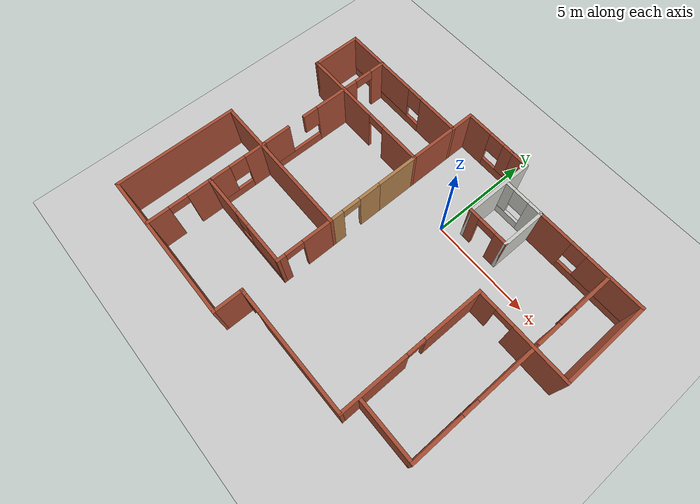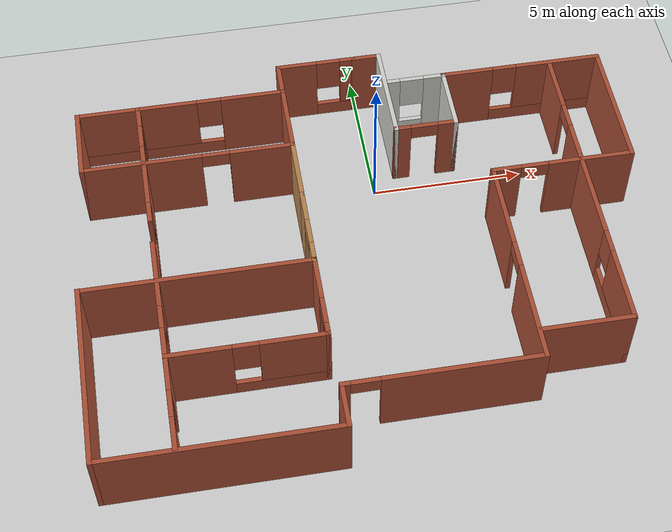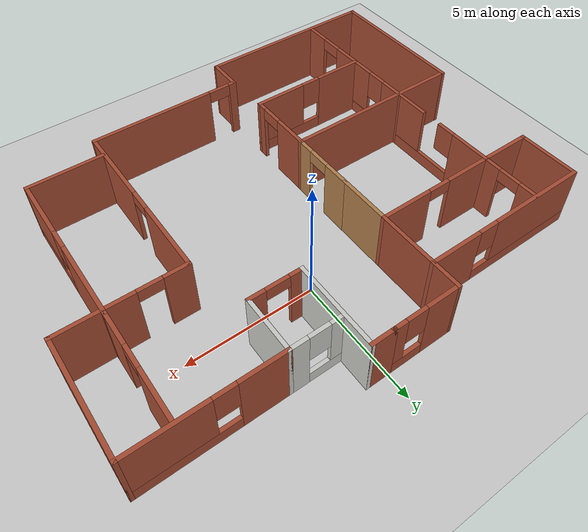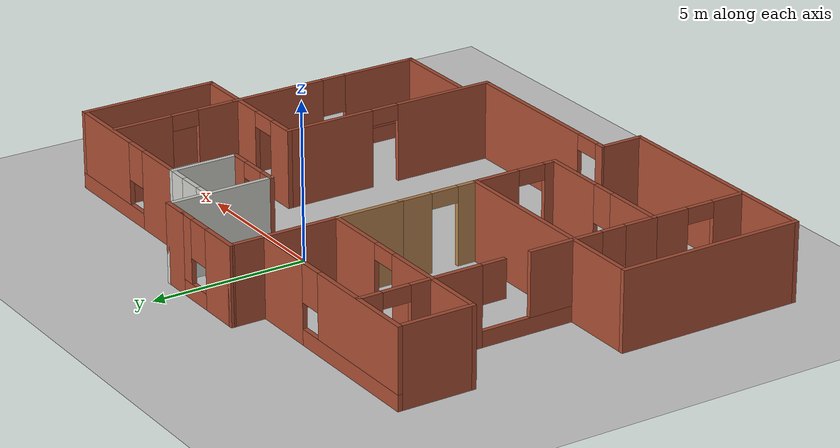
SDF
<?xml version="1.0" ?>
<sdf version="1.5">
  <world name="default">
    <!-- A global light source -->
    <include>
      <uri>model://sun</uri>
    </include>
    <!-- A ground plane -->
    <include>
      <uri>model://ground_plane</uri>
    </include>
    <include>
      <uri>model://asphalt_plane</uri>
    </include>
    <model name='COMPLEX_TEST_ENVIRONMENT_1'>
    <pose frame=''>-0.872826 -3.08396 0 0 -0 0</pose>
    <link name='Wall_102'>
      <collision name='Wall_102_Collision'>
        <geometry>
          <box>
            <size>2.5 0.15 2.5</size>
          </box>
        </geometry>
        <pose frame=''>0 0 1.25 0 -0 0</pose>
      </collision>
      <visual name='Wall_102_Visual'>
        <pose frame=''>0 0 1.25 0 -0 0</pose>
        <geometry>
          <box>
            <size>2.5 0.15 2.5</size>
          </box>
        </geometry>
        <material>
          <script>
            <uri>file://media/materials/scripts/gazebo.material</uri>
            <name>Gazebo/Bricks</name>
          </script>
          <ambient>1 1 1 1</ambient>
        </material>
        <meta>
          <layer>0</layer>
        </meta>
      </visual>
      <pose frame=''>-8.62482 4.75004 0 0 -0 -1.5708</pose>
    </link>
    <link name='Wall_103'>
      <collision name='Wall_103_Collision'>
        <geometry>
          <box>
            <size>2.15 0.15 2.5</size>
          </box>
        </geometry>
        <pose frame=''>0 0 1.25 0 -0 0</pose>
      </collision>
      <visual name='Wall_103_Visual'>
        <pose frame=''>0 0 1.25 0 -0 0</pose>
        <geometry>
          <box>
            <size>2.15 0.15 2.5</size>
          </box>
        </geometry>
        <material>
          <script>
            <uri>file://media/materials/scripts/gazebo.material</uri>
            <name>Gazebo/Bricks</name>
          </script>
          <ambient>1 1 1 1</ambient>
        </material>
        <meta>
          <layer>0</layer>
        </meta>
      </visual>
      <pose frame=''>-7.62483 3.57504 0 0 -0 0</pose>
    </link>
    <link name='Wall_106'>
      <collision name='Wall_106_Collision'>
        <geometry>
          <box>
            <size>1.25 0.15 2.5</size>
          </box>
        </geometry>
        <pose frame=''>0 0 1.25 0 -0 0</pose>
      </collision>
      <visual name='Wall_106_Visual'>
        <pose frame=''>0 0 1.25 0 -0 0</pose>
        <geometry>
          <box>
            <size>1.25 0.15 2.5</size>
          </box>
        </geometry>
        <material>
          <script>
            <uri>file://media/materials/scripts/gazebo.material</uri>
            <name>Gazebo/Bricks</name>
          </script>
          <ambient>1 1 1 1</ambient>
        </material>
        <meta>
          <layer>0</layer>
        </meta>
      </visual>
      <pose frame=''>-1.77483 6.47504 0 0 -0 1.5708</pose>
    </link>
    <link name='Wall_107'>
      <pose frame=''>-0.474825 7.02504 0 0 -0 0</pose>
      <visual name='Wall_107_Visual_0'>
        <pose frame=''>-0.684442 0 1.25 0 -0 0</pose>
        <geometry>
          <box>
            <size>1.38112 0.15 2.5</size>
          </box>
        </geometry>
        <material>
          <script>
            <uri>file://media/materials/scripts/gazebo.material</uri>
            <name>Gazebo/Bricks</name>
          </script>
          <ambient>1 1 1 1</ambient>
        </material>
        <meta>
          <layer>0</layer>
        </meta>
      </visual>
      <collision name='Wall_107_Collision_0'>
        <geometry>
          <box>
            <size>1.38112 0.15 2.5</size>
          </box>
        </geometry>
        <pose frame=''>-0.684442 0 1.25 0 -0 0</pose>
      </collision>
      <visual name='Wall_107_Visual_1'>
        <pose frame=''>0.690558 0 0.25 0 -0 0</pose>
        <geometry>
          <box>
            <size>1.36888 0.15 0.5</size>
          </box>
        </geometry>
        <material>
          <script>
            <uri>file://media/materials/scripts/gazebo.material</uri>
            <name>Gazebo/Bricks</name>
          </script>
          <ambient>1 1 1 1</ambient>
        </material>
        <meta>
          <layer>0</layer>
        </meta>
      </visual>
      <collision name='Wall_107_Collision_1'>
        <geometry>
          <box>
            <size>1.36888 0.15 0.5</size>
          </box>
        </geometry>
        <pose frame=''>0.690558 0 0.25 0 -0 0</pose>
      </collision>
      <visual name='Wall_107_Visual_2'>
        <pose frame=''>1.09056 0 1.5 0 -0 0</pose>
        <geometry>
          <box>
            <size>0.568884 0.15 2</size>
          </box>
        </geometry>
        <material>
          <script>
            <uri>file://media/materials/scripts/gazebo.material</uri>
            <name>Gazebo/Bricks</name>
          </script>
          <ambient>1 1 1 1</ambient>
        </material>
        <meta>
          <layer>0</layer>
        </meta>
      </visual>
      <collision name='Wall_107_Collision_2'>
        <geometry>
          <box>
            <size>0.568884 0.15 2</size>
          </box>
        </geometry>
        <pose frame=''>1.09056 0 1.5 0 -0 0</pose>
      </collision>
      <visual name='Wall_107_Visual_3'>
        <pose frame=''>0.406116 0 1.9 0 -0 0</pose>
        <geometry>
          <box>
            <size>0.8 0.15 1.2</size>
          </box>
        </geometry>
        <material>
          <script>
            <uri>file://media/materials/scripts/gazebo.material</uri>
            <name>Gazebo/Bricks</name>
          </script>
          <ambient>1 1 1 1</ambient>
        </material>
        <meta>
          <layer>0</layer>
        </meta>
      </visual>
      <collision name='Wall_107_Collision_3'>
        <geometry>
          <box>
            <size>0.8 0.15 1.2</size>
          </box>
        </geometry>
        <pose frame=''>0.406116 0 1.9 0 -0 0</pose>
      </collision>
    </link>
    <link name='Wall_110'>
      <collision name='Wall_110_Collision'>
        <geometry>
          <box>
            <size>2.25 0.15 2.5</size>
          </box>
        </geometry>
        <pose frame=''>0 0 1.25 0 -0 0</pose>
      </collision>
      <visual name='Wall_110_Visual'>
        <pose frame=''>0 0 1.25 0 -0 0</pose>
        <geometry>
          <box>
            <size>2.25 0.15 2.5</size>
          </box>
        </geometry>
        <material>
          <script>
            <uri>file://media/materials/scripts/gazebo.material</uri>
            <name>Gazebo/CeilingTiled</name>
          </script>
          <ambient>1 1 1 1</ambient>
        </material>
        <meta>
          <layer>0</layer>
        </meta>
      </visual>
      <pose frame=''>3.67517 4.72504 0 0 -0 1.5708</pose>
    </link>
    <link name='Wall_111'>
      <pose frame=''>6.35017 5.77504 0 0 -0 0</pose>
      <visual name='Wall_111_Visual_0'>
        <pose frame=''>-1.85201 0 1.25 0 -0 0</pose>
        <geometry>
          <box>
            <size>1.79597 0.15 2.5</size>
          </box>
        </geometry>
        <material>
          <script>
            <uri>file://media/materials/scripts/gazebo.material</uri>
            <name>Gazebo/Bricks</name>
          </script>
          <ambient>1 1 1 1</ambient>
        </material>
        <meta>
          <layer>0</layer>
        </meta>
      </visual>
      <collision name='Wall_111_Collision_0'>
        <geometry>
          <box>
            <size>1.79597 0.15 2.5</size>
          </box>
        </geometry>
        <pose frame=''>-1.85201 0 1.25 0 -0 0</pose>
      </collision>
      <visual name='Wall_111_Visual_1'>
        <pose frame=''>0.897985 0 0.25 0 -0 0</pose>
        <geometry>
          <box>
            <size>3.70403 0.15 0.5</size>
          </box>
        </geometry>
        <material>
          <script>
            <uri>file://media/materials/scripts/gazebo.material</uri>
            <name>Gazebo/Bricks</name>
          </script>
          <ambient>1 1 1 1</ambient>
        </material>
        <meta>
          <layer>0</layer>
        </meta>
      </visual>
      <collision name='Wall_111_Collision_1'>
        <geometry>
          <box>
            <size>3.70403 0.15 0.5</size>
          </box>
        </geometry>
        <pose frame=''>0.897985 0 0.25 0 -0 0</pose>
      </collision>
      <visual name='Wall_111_Visual_2'>
        <pose frame=''>1.29798 0 1.5 0 -0 0</pose>
        <geometry>
          <box>
            <size>2.90403 0.15 2</size>
          </box>
        </geometry>
        <material>
          <script>
            <uri>file://media/materials/scripts/gazebo.material</uri>
            <name>Gazebo/Bricks</name>
          </script>
          <ambient>1 1 1 1</ambient>
        </material>
        <meta>
          <layer>0</layer>
        </meta>
      </visual>
      <collision name='Wall_111_Collision_2'>
        <geometry>
          <box>
            <size>2.90403 0.15 2</size>
          </box>
        </geometry>
        <pose frame=''>1.29798 0 1.5 0 -0 0</pose>
      </collision>
      <visual name='Wall_111_Visual_3'>
        <pose frame=''>-0.55403 0 1.9 0 -0 0</pose>
        <geometry>
          <box>
            <size>0.8 0.15 1.2</size>
          </box>
        </geometry>
        <material>
          <script>
            <uri>file://media/materials/scripts/gazebo.material</uri>
            <name>Gazebo/Bricks</name>
          </script>
          <ambient>1 1 1 1</ambient>
        </material>
        <meta>
          <layer>0</layer>
        </meta>
      </visual>
      <collision name='Wall_111_Collision_3'>
        <geometry>
          <box>
            <size>0.8 0.15 1.2</size>
          </box>
        </geometry>
        <pose frame=''>-0.55403 0 1.9 0 -0 0</pose>
      </collision>
    </link>
    <link name='Wall_112'>
      <collision name='Wall_112_Collision'>
        <geometry>
          <box>
            <size>4.5 0.15 2.5</size>
          </box>
        </geometry>
        <pose frame=''>0 0 1.25 0 -0 0</pose>
      </collision>
      <visual name='Wall_112_Visual'>
        <pose frame=''>0 0 1.25 0 -0 0</pose>
        <geometry>
          <box>
            <size>4.5 0.15 2.5</size>
          </box>
        </geometry>
        <material>
          <script>
            <uri>file://media/materials/scripts/gazebo.material</uri>
            <name>Gazebo/Bricks</name>
          </script>
          <ambient>1 1 1 1</ambient>
        </material>
        <meta>
          <layer>0</layer>
        </meta>
      </visual>
      <pose frame=''>9.02518 3.60004 0 0 -0 -1.5708</pose>
    </link>
    <link name='Wall_113'>
      <pose frame=''>6.72517 1.42504 0 0 -0 3.14159</pose>
      <visual name='Wall_113_Visual_0'>
        <pose frame=''>-0.947985 0 1.25 0 -0 0</pose>
        <geometry>
          <box>
            <size>2.85403 0.15 2.5</size>
          </box>
        </geometry>
        <material>
          <script>
            <uri>file://media/materials/scripts/gazebo.material</uri>
            <name>Gazebo/Bricks</name>
          </script>
          <ambient>1 1 1 1</ambient>
        </material>
        <meta>
          <layer>0</layer>
        </meta>
      </visual>
      <collision name='Wall_113_Collision_0'>
        <geometry>
          <box>
            <size>2.85403 0.15 2.5</size>
          </box>
        </geometry>
        <pose frame=''>-0.947985 0 1.25 0 -0 0</pose>
      </collision>
      <visual name='Wall_113_Visual_1'>
        <pose frame=''>1.87702 0 1.25 0 -0 0</pose>
        <geometry>
          <box>
            <size>0.99597 0.15 2.5</size>
          </box>
        </geometry>
        <material>
          <script>
            <uri>file://media/materials/scripts/gazebo.material</uri>
            <name>Gazebo/Bricks</name>
          </script>
          <ambient>1 1 1 1</ambient>
        </material>
        <meta>
          <layer>0</layer>
        </meta>
      </visual>
      <collision name='Wall_113_Collision_1'>
        <geometry>
          <box>
            <size>0.99597 0.15 2.5</size>
          </box>
        </geometry>
        <pose frame=''>1.87702 0 1.25 0 -0 0</pose>
      </collision>
      <visual name='Wall_113_Visual_2'>
        <pose frame=''>0.92903 0 2.25 0 -0 0</pose>
        <geometry>
          <box>
            <size>0.9 0.15 0.5</size>
          </box>
        </geometry>
        <material>
          <script>
            <uri>file://media/materials/scripts/gazebo.material</uri>
            <name>Gazebo/Bricks</name>
          </script>
          <ambient>1 1 1 1</ambient>
        </material>
        <meta>
          <layer>0</layer>
        </meta>
      </visual>
      <collision name='Wall_113_Collision_2'>
        <geometry>
          <box>
            <size>0.9 0.15 0.5</size>
          </box>
        </geometry>
        <pose frame=''>0.92903 0 2.25 0 -0 0</pose>
      </collision>
    </link>
    <link name='Wall_116'>
      <collision name='Wall_116_Collision'>
        <geometry>
          <box>
            <size>1 0.15 2.5</size>
          </box>
        </geometry>
        <pose frame=''>0 0 1.25 0 -0 0</pose>
      </collision>
      <visual name='Wall_116_Visual'>
        <pose frame=''>0 0 1.25 0 -0 0</pose>
        <geometry>
          <box>
            <size>1 0.15 2.5</size>
          </box>
        </geometry>
        <material>
          <script>
            <uri>file://media/materials/scripts/gazebo.material</uri>
            <name>Gazebo/Bricks</name>
          </script>
          <ambient>1 1 1 1</ambient>
        </material>
        <meta>
          <layer>0</layer>
        </meta>
      </visual>
      <pose frame=''>1.25018 7.02504 0 0 -0 0</pose>
    </link>
    <link name='Wall_117'>
      <collision name='Wall_117_Collision'>
        <geometry>
          <box>
            <size>3.5 0.15 2.5</size>
          </box>
        </geometry>
        <pose frame=''>0 0 1.25 0 -0 0</pose>
      </collision>
      <visual name='Wall_117_Visual'>
        <pose frame=''>0 0 1.25 0 -0 0</pose>
        <geometry>
          <box>
            <size>3.5 0.15 2.5</size>
          </box>
        </geometry>
        <material>
          <script>
            <uri>file://media/materials/scripts/gazebo.material</uri>
            <name>Gazebo/CeilingTiled</name>
          </script>
          <ambient>1 1 1 1</ambient>
        </material>
        <meta>
          <layer>0</layer>
        </meta>
      </visual>
      <pose frame=''>1.67518 5.35004 0 0 -0 -1.5708</pose>
    </link>
    <link name='Wall_119'>
      <pose frame=''>2.67517 3.67504 0 0 -0 0</pose>
      <visual name='Wall_119_Visual_0'>
        <pose frame=''>-0.789731 0 1.25 0 -0 0</pose>
        <geometry>
          <box>
            <size>0.570537 0.15 2.5</size>
          </box>
        </geometry>
        <material>
          <script>
            <uri>file://media/materials/scripts/gazebo.material</uri>
            <name>Gazebo/Bricks</name>
          </script>
          <ambient>1 1 1 1</ambient>
        </material>
        <meta>
          <layer>0</layer>
        </meta>
      </visual>
      <collision name='Wall_119_Collision_0'>
        <geometry>
          <box>
            <size>0.570537 0.15 2.5</size>
          </box>
        </geometry>
        <pose frame=''>-0.789731 0 1.25 0 -0 0</pose>
      </collision>
      <visual name='Wall_119_Visual_1'>
        <pose frame=''>0.735269 0 1.25 0 -0 0</pose>
        <geometry>
          <box>
            <size>0.679463 0.15 2.5</size>
          </box>
        </geometry>
        <material>
          <script>
            <uri>file://media/materials/scripts/gazebo.material</uri>
            <name>Gazebo/Bricks</name>
          </script>
          <ambient>1 1 1 1</ambient>
        </material>
        <meta>
          <layer>0</layer>
        </meta>
      </visual>
      <collision name='Wall_119_Collision_1'>
        <geometry>
          <box>
            <size>0.679463 0.15 2.5</size>
          </box>
        </geometry>
        <pose frame=''>0.735269 0 1.25 0 -0 0</pose>
      </collision>
      <visual name='Wall_119_Visual_2'>
        <pose frame=''>-0.054463 0 2.25 0 -0 0</pose>
        <geometry>
          <box>
            <size>0.9 0.15 0.5</size>
          </box>
        </geometry>
        <material>
          <script>
            <uri>file://media/materials/scripts/gazebo.material</uri>
            <name>Gazebo/Bricks</name>
          </script>
          <ambient>1 1 1 1</ambient>
        </material>
        <meta>
          <layer>0</layer>
        </meta>
      </visual>
      <collision name='Wall_119_Collision_2'>
        <geometry>
          <box>
            <size>0.9 0.15 0.5</size>
          </box>
        </geometry>
        <pose frame=''>-0.054463 0 2.25 0 -0 0</pose>
      </collision>
    </link>
    <link name='Wall_121'>
      <pose frame=''>4.42518 -2.12496 0 0 -0 -1.5708</pose>
      <visual name='Wall_121_Visual_0'>
        <pose frame=''>-2.12488 0 1.25 0 -0 0</pose>
        <geometry>
          <box>
            <size>3.00023 0.15 2.5</size>
          </box>
        </geometry>
        <material>
          <script>
            <uri>file://media/materials/scripts/gazebo.material</uri>
            <name>Gazebo/Bricks</name>
          </script>
          <ambient>1 1 1 1</ambient>
        </material>
        <meta>
          <layer>0</layer>
        </meta>
      </visual>
      <collision name='Wall_121_Collision_0'>
        <geometry>
          <box>
            <size>3.00023 0.15 2.5</size>
          </box>
        </geometry>
        <pose frame=''>-2.12488 0 1.25 0 -0 0</pose>
      </collision>
      <visual name='Wall_121_Visual_1'>
        <pose frame=''>1.95012 0 1.25 0 -0 0</pose>
        <geometry>
          <box>
            <size>3.34977 0.15 2.5</size>
          </box>
        </geometry>
        <material>
          <script>
            <uri>file://media/materials/scripts/gazebo.material</uri>
            <name>Gazebo/Bricks</name>
          </script>
          <ambient>1 1 1 1</ambient>
        </material>
        <meta>
          <layer>0</layer>
        </meta>
      </visual>
      <collision name='Wall_121_Collision_1'>
        <geometry>
          <box>
            <size>3.34977 0.15 2.5</size>
          </box>
        </geometry>
        <pose frame=''>1.95012 0 1.25 0 -0 0</pose>
      </collision>
      <visual name='Wall_121_Visual_2'>
        <pose frame=''>-0.174768 0 2.25 0 -0 0</pose>
        <geometry>
          <box>
            <size>0.9 0.15 0.5</size>
          </box>
        </geometry>
        <material>
          <script>
            <uri>file://media/materials/scripts/gazebo.material</uri>
            <name>Gazebo/Bricks</name>
          </script>
          <ambient>1 1 1 1</ambient>
        </material>
        <meta>
          <layer>0</layer>
        </meta>
      </visual>
      <collision name='Wall_121_Collision_2'>
        <geometry>
          <box>
            <size>0.9 0.15 0.5</size>
          </box>
        </geometry>
        <pose frame=''>-0.174768 0 2.25 0 -0 0</pose>
      </collision>
    </link>
    <link name='Wall_122'>
      <pose frame=''>1.37518 -5.67496 0 0 -0 3.14159</pose>
      <visual name='Wall_122_Visual_0'>
        <pose frame=''>-0.61602 0 1.25 0 -0 0</pose>
        <geometry>
          <box>
            <size>5.01796 0.15 2.5</size>
          </box>
        </geometry>
        <material>
          <script>
            <uri>file://media/materials/scripts/gazebo.material</uri>
            <name>Gazebo/Bricks</name>
          </script>
          <ambient>1 1 1 1</ambient>
        </material>
        <meta>
          <layer>0</layer>
        </meta>
      </visual>
      <collision name='Wall_122_Collision_0'>
        <geometry>
          <box>
            <size>5.01796 0.15 2.5</size>
          </box>
        </geometry>
        <pose frame=''>-0.61602 0 1.25 0 -0 0</pose>
      </collision>
      <visual name='Wall_122_Visual_1'>
        <pose frame=''>2.95898 0 1.25 0 -0 0</pose>
        <geometry>
          <box>
            <size>0.332041 0.15 2.5</size>
          </box>
        </geometry>
        <material>
          <script>
            <uri>file://media/materials/scripts/gazebo.material</uri>
            <name>Gazebo/Bricks</name>
          </script>
          <ambient>1 1 1 1</ambient>
        </material>
        <meta>
          <layer>0</layer>
        </meta>
      </visual>
      <collision name='Wall_122_Collision_1'>
        <geometry>
          <box>
            <size>0.332041 0.15 2.5</size>
          </box>
        </geometry>
        <pose frame=''>2.95898 0 1.25 0 -0 0</pose>
      </collision>
      <visual name='Wall_122_Visual_2'>
        <pose frame=''>2.34296 0 2.25 0 -0 0</pose>
        <geometry>
          <box>
            <size>0.9 0.15 0.5</size>
          </box>
        </geometry>
        <material>
          <script>
            <uri>file://media/materials/scripts/gazebo.material</uri>
            <name>Gazebo/Bricks</name>
          </script>
          <ambient>1 1 1 1</ambient>
        </material>
        <meta>
          <layer>0</layer>
        </meta>
      </visual>
      <collision name='Wall_122_Collision_2'>
        <geometry>
          <box>
            <size>0.9 0.15 0.5</size>
          </box>
        </geometry>
        <pose frame=''>2.34296 0 2.25 0 -0 0</pose>
      </collision>
    </link>
    <link name='Wall_123'>
      <collision name='Wall_123_Collision'>
        <geometry>
          <box>
            <size>1.5 0.15 2.5</size>
          </box>
        </geometry>
        <pose frame=''>0 0 1.25 0 -0 0</pose>
      </collision>
      <visual name='Wall_123_Visual'>
        <pose frame=''>0 0 1.25 0 -0 0</pose>
        <geometry>
          <box>
            <size>1.5 0.15 2.5</size>
          </box>
        </geometry>
        <material>
          <script>
            <uri>file://media/materials/scripts/gazebo.material</uri>
            <name>Gazebo/Bricks</name>
          </script>
          <ambient>1 1 1 1</ambient>
        </material>
        <meta>
          <layer>0</layer>
        </meta>
      </visual>
      <pose frame=''>-1.675 -6.35 0 0 -0 -1.57106</pose>
    </link>
    <link name='Wall_124'>
      <collision name='Wall_124_Collision'>
        <geometry>
          <box>
            <size>7.5 0.15 2.5</size>
          </box>
        </geometry>
        <pose frame=''>0 0 1.25 0 -0 0</pose>
      </collision>
      <visual name='Wall_124_Visual'>
        <pose frame=''>0 0 1.25 0 -0 0</pose>
        <geometry>
          <box>
            <size>7.5 0.15 2.5</size>
          </box>
        </geometry>
        <material>
          <script>
            <uri>file://media/materials/scripts/gazebo.material</uri>
            <name>Gazebo/Bricks</name>
          </script>
          <ambient>1 1 1 1</ambient>
        </material>
        <meta>
          <layer>0</layer>
        </meta>
      </visual>
      <pose frame=''>-5.35017 -7.02504 0 0 -0 3.14159</pose>
    </link>
    <link name='Wall_133'>
      <collision name='Wall_133_Collision'>
        <geometry>
          <box>
            <size>7.25 0.15 2.5</size>
          </box>
        </geometry>
        <pose frame=''>0 0 1.25 0 -0 0</pose>
      </collision>
      <visual name='Wall_133_Visual'>
        <pose frame=''>0 0 1.25 0 -0 0</pose>
        <geometry>
          <box>
            <size>7.25 0.15 2.5</size>
          </box>
        </geometry>
        <material>
          <script>
            <uri>file://media/materials/scripts/gazebo.material</uri>
            <name>Gazebo/Bricks</name>
          </script>
          <ambient>1 1 1 1</ambient>
        </material>
        <meta>
          <layer>0</layer>
        </meta>
      </visual>
      <pose frame=''>-5.32482 -1.12496 0 0 -0 3.14159</pose>
    </link>
    <link name='Wall_136'>
      <pose frame=''>-6.62483 1.27504 0 0 -0 -1.5708</pose>
      <visual name='Wall_136_Visual_0'>
        <pose frame=''>-1.52914 0 1.25 0 -0 0</pose>
        <geometry>
          <box>
            <size>1.69172 0.15 2.5</size>
          </box>
        </geometry>
        <material>
          <script>
            <uri>file://media/materials/scripts/gazebo.material</uri>
            <name>Gazebo/Bricks</name>
          </script>
          <ambient>1 1 1 1</ambient>
        </material>
        <meta>
          <layer>0</layer>
        </meta>
      </visual>
      <collision name='Wall_136_Collision_0'>
        <geometry>
          <box>
            <size>1.69172 0.15 2.5</size>
          </box>
        </geometry>
        <pose frame=''>-1.52914 0 1.25 0 -0 0</pose>
      </collision>
      <visual name='Wall_136_Visual_1'>
        <pose frame=''>0.845859 0 0.25 0 -0 0</pose>
        <geometry>
          <box>
            <size>3.05828 0.15 0.5</size>
          </box>
        </geometry>
        <material>
          <script>
            <uri>file://media/materials/scripts/gazebo.material</uri>
            <name>Gazebo/Bricks</name>
          </script>
          <ambient>1 1 1 1</ambient>
        </material>
        <meta>
          <layer>0</layer>
        </meta>
      </visual>
      <collision name='Wall_136_Collision_1'>
        <geometry>
          <box>
            <size>3.05828 0.15 0.5</size>
          </box>
        </geometry>
        <pose frame=''>0.845859 0 0.25 0 -0 0</pose>
      </collision>
      <visual name='Wall_136_Visual_2'>
        <pose frame=''>1.63913 0 1.5 0 -0 0</pose>
        <geometry>
          <box>
            <size>1.47174 0.15 2</size>
          </box>
        </geometry>
        <material>
          <script>
            <uri>file://media/materials/scripts/gazebo.material</uri>
            <name>Gazebo/Bricks</name>
          </script>
          <ambient>1 1 1 1</ambient>
        </material>
        <meta>
          <layer>0</layer>
        </meta>
      </visual>
      <collision name='Wall_136_Collision_2'>
        <geometry>
          <box>
            <size>1.47174 0.15 2</size>
          </box>
        </geometry>
        <pose frame=''>1.63913 0 1.5 0 -0 0</pose>
      </collision>
      <visual name='Wall_136_Visual_3'>
        <pose frame=''>-0.290012 0 1.9 0 -0 0</pose>
        <geometry>
          <box>
            <size>0.78654 0.15 1.2</size>
          </box>
        </geometry>
        <material>
          <script>
            <uri>file://media/materials/scripts/gazebo.material</uri>
            <name>Gazebo/Bricks</name>
          </script>
          <ambient>1 1 1 1</ambient>
        </material>
        <meta>
          <layer>0</layer>
        </meta>
      </visual>
      <collision name='Wall_136_Collision_3'>
        <geometry>
          <box>
            <size>0.78654 0.15 1.2</size>
          </box>
        </geometry>
        <pose frame=''>-0.290012 0 1.9 0 -0 0</pose>
      </collision>
    </link>
    <link name='Wall_139'>
      <collision name='Wall_139_Collision'>
        <geometry>
          <box>
            <size>6.05572 0.15 2.5</size>
          </box>
        </geometry>
        <pose frame=''>0 0 1.25 0 -0 0</pose>
      </collision>
      <visual name='Wall_139_Visual'>
        <pose frame=''>0 0 1.25 0 -0 0</pose>
        <geometry>
          <box>
            <size>6.05572 0.15 2.5</size>
          </box>
        </geometry>
        <material>
          <script>
            <uri>file://media/materials/scripts/gazebo.material</uri>
            <name>Gazebo/Bricks</name>
          </script>
          <ambient>1 1 1 1</ambient>
        </material>
        <meta>
          <layer>0</layer>
        </meta>
      </visual>
      <pose frame=''>-9.02517 -4.07218 0 0 -0 1.5708</pose>
    </link>
    <link name='Wall_141'>
      <pose frame=''>-6.62483 -2.44996 0 0 -0 -1.5708</pose>
      <visual name='Wall_141_Visual_0'>
        <pose frame=''>-0.941719 0 1.25 0 -0 0</pose>
        <geometry>
          <box>
            <size>1.11656 0.15 2.5</size>
          </box>
        </geometry>
        <material>
          <script>
            <uri>file://media/materials/scripts/gazebo.material</uri>
            <name>Gazebo/Bricks</name>
          </script>
          <ambient>1 1 1 1</ambient>
        </material>
        <meta>
          <layer>0</layer>
        </meta>
      </visual>
      <collision name='Wall_141_Collision_0'>
        <geometry>
          <box>
            <size>1.11656 0.15 2.5</size>
          </box>
        </geometry>
        <pose frame=''>-0.941719 0 1.25 0 -0 0</pose>
      </collision>
      <visual name='Wall_141_Visual_1'>
        <pose frame=''>0.558281 0 0.25 0 -0 0</pose>
        <geometry>
          <box>
            <size>1.88344 0.15 0.5</size>
          </box>
        </geometry>
        <material>
          <script>
            <uri>file://media/materials/scripts/gazebo.material</uri>
            <name>Gazebo/Bricks</name>
          </script>
          <ambient>1 1 1 1</ambient>
        </material>
        <meta>
          <layer>0</layer>
        </meta>
      </visual>
      <collision name='Wall_141_Collision_1'>
        <geometry>
          <box>
            <size>1.88344 0.15 0.5</size>
          </box>
        </geometry>
        <pose frame=''>0.558281 0 0.25 0 -0 0</pose>
      </collision>
      <visual name='Wall_141_Visual_2'>
        <pose frame=''>0.958281 0 1.5 0 -0 0</pose>
        <geometry>
          <box>
            <size>1.08344 0.15 2</size>
          </box>
        </geometry>
        <material>
          <script>
            <uri>file://media/materials/scripts/gazebo.material</uri>
            <name>Gazebo/Bricks</name>
          </script>
          <ambient>1 1 1 1</ambient>
        </material>
        <meta>
          <layer>0</layer>
        </meta>
      </visual>
      <collision name='Wall_141_Collision_2'>
        <geometry>
          <box>
            <size>1.08344 0.15 2</size>
          </box>
        </geometry>
        <pose frame=''>0.958281 0 1.5 0 -0 0</pose>
      </collision>
      <visual name='Wall_141_Visual_3'>
        <pose frame=''>0.016562 0 1.9 0 -0 0</pose>
        <geometry>
          <box>
            <size>0.8 0.15 1.2</size>
          </box>
        </geometry>
        <material>
          <script>
            <uri>file://media/materials/scripts/gazebo.material</uri>
            <name>Gazebo/Bricks</name>
          </script>
          <ambient>1 1 1 1</ambient>
        </material>
        <meta>
          <layer>0</layer>
        </meta>
      </visual>
      <collision name='Wall_141_Collision_3'>
        <geometry>
          <box>
            <size>0.8 0.15 1.2</size>
          </box>
        </geometry>
        <pose frame=''>0.016562 0 1.9 0 -0 0</pose>
      </collision>
    </link>
    <link name='Wall_142'>
      <pose frame=''>-4.19982 -3.87496 0 0 -0 0</pose>
      <visual name='Wall_142_Visual_0'>
        <pose frame=''>-1.47366 0 1.25 0 -0 0</pose>
        <geometry>
          <box>
            <size>2.05267 0.15 2.5</size>
          </box>
        </geometry>
        <material>
          <script>
            <uri>file://media/materials/scripts/gazebo.material</uri>
            <name>Gazebo/Bricks</name>
          </script>
          <ambient>1 1 1 1</ambient>
        </material>
        <meta>
          <layer>0</layer>
        </meta>
      </visual>
      <collision name='Wall_142_Collision_0'>
        <geometry>
          <box>
            <size>2.05267 0.15 2.5</size>
          </box>
        </geometry>
        <pose frame=''>-1.47366 0 1.25 0 -0 0</pose>
      </collision>
      <visual name='Wall_142_Visual_1'>
        <pose frame=''>1.02634 0 0.25 0 -0 0</pose>
        <geometry>
          <box>
            <size>2.94733 0.15 0.5</size>
          </box>
        </geometry>
        <material>
          <script>
            <uri>file://media/materials/scripts/gazebo.material</uri>
            <name>Gazebo/Bricks</name>
          </script>
          <ambient>1 1 1 1</ambient>
        </material>
        <meta>
          <layer>0</layer>
        </meta>
      </visual>
      <collision name='Wall_142_Collision_1'>
        <geometry>
          <box>
            <size>2.94733 0.15 0.5</size>
          </box>
        </geometry>
        <pose frame=''>1.02634 0 0.25 0 -0 0</pose>
      </collision>
      <visual name='Wall_142_Visual_2'>
        <pose frame=''>1.42634 0 1.5 0 -0 0</pose>
        <geometry>
          <box>
            <size>2.14733 0.15 2</size>
          </box>
        </geometry>
        <material>
          <script>
            <uri>file://media/materials/scripts/gazebo.material</uri>
            <name>Gazebo/Bricks</name>
          </script>
          <ambient>1 1 1 1</ambient>
        </material>
        <meta>
          <layer>0</layer>
        </meta>
      </visual>
      <collision name='Wall_142_Collision_2'>
        <geometry>
          <box>
            <size>2.14733 0.15 2</size>
          </box>
        </geometry>
        <pose frame=''>1.42634 0 1.5 0 -0 0</pose>
      </collision>
      <visual name='Wall_142_Visual_3'>
        <pose frame=''>-0.047326 0 1.9 0 -0 0</pose>
        <geometry>
          <box>
            <size>0.8 0.15 1.2</size>
          </box>
        </geometry>
        <material>
          <script>
            <uri>file://media/materials/scripts/gazebo.material</uri>
            <name>Gazebo/Bricks</name>
          </script>
          <ambient>1 1 1 1</ambient>
        </material>
        <meta>
          <layer>0</layer>
        </meta>
      </visual>
      <collision name='Wall_142_Collision_3'>
        <geometry>
          <box>
            <size>0.8 0.15 1.2</size>
          </box>
        </geometry>
        <pose frame=''>-0.047326 0 1.9 0 -0 0</pose>
      </collision>
    </link>
    <link name='Wall_143'>
      <pose frame=''>-1.77483 -2.49996 0 0 -0 1.5708</pose>
      <visual name='Wall_143_Visual_0'>
        <pose frame=''>-1.21744 0 1.25 0 -0 0</pose>
        <geometry>
          <box>
            <size>0.46512 0.15 2.5</size>
          </box>
        </geometry>
        <material>
          <script>
            <uri>file://media/materials/scripts/gazebo.material</uri>
            <name>Gazebo/Bricks</name>
          </script>
          <ambient>1 1 1 1</ambient>
        </material>
        <meta>
          <layer>0</layer>
        </meta>
      </visual>
      <collision name='Wall_143_Collision_0'>
        <geometry>
          <box>
            <size>0.46512 0.15 2.5</size>
          </box>
        </geometry>
        <pose frame=''>-1.21744 0 1.25 0 -0 0</pose>
      </collision>
      <visual name='Wall_143_Visual_1'>
        <pose frame=''>0.68256 0 1.25 0 -0 0</pose>
        <geometry>
          <box>
            <size>1.53488 0.15 2.5</size>
          </box>
        </geometry>
        <material>
          <script>
            <uri>file://media/materials/scripts/gazebo.material</uri>
            <name>Gazebo/Bricks</name>
          </script>
          <ambient>1 1 1 1</ambient>
        </material>
        <meta>
          <layer>0</layer>
        </meta>
      </visual>
      <collision name='Wall_143_Collision_1'>
        <geometry>
          <box>
            <size>1.53488 0.15 2.5</size>
          </box>
        </geometry>
        <pose frame=''>0.68256 0 1.25 0 -0 0</pose>
      </collision>
      <visual name='Wall_143_Visual_2'>
        <pose frame=''>-0.53488 0 2.25 0 -0 0</pose>
        <geometry>
          <box>
            <size>0.9 0.15 0.5</size>
          </box>
        </geometry>
        <material>
          <script>
            <uri>file://media/materials/scripts/gazebo.material</uri>
            <name>Gazebo/Bricks</name>
          </script>
          <ambient>1 1 1 1</ambient>
        </material>
        <meta>
          <layer>0</layer>
        </meta>
      </visual>
      <collision name='Wall_143_Collision_2'>
        <geometry>
          <box>
            <size>0.9 0.15 0.5</size>
          </box>
        </geometry>
        <pose frame=''>-0.53488 0 2.25 0 -0 0</pose>
      </collision>
    </link>
    <link name='Wall_145'>
      <pose frame=''>2.75018 5.77504 0 0 -0 3.14159</pose>
      <visual name='Wall_145_Visual_0'>
        <pose frame=''>-0.62211 0 1.25 0 -0 0</pose>
        <geometry>
          <box>
            <size>0.755781 0.15 2.5</size>
          </box>
        </geometry>
        <material>
          <script>
            <uri>file://media/materials/scripts/gazebo.material</uri>
            <name>Gazebo/CeilingTiled</name>
          </script>
          <ambient>1 1 1 1</ambient>
        </material>
        <meta>
          <layer>0</layer>
        </meta>
      </visual>
      <collision name='Wall_145_Collision_0'>
        <geometry>
          <box>
            <size>0.755781 0.15 2.5</size>
          </box>
        </geometry>
        <pose frame=''>-0.62211 0 1.25 0 -0 0</pose>
      </collision>
      <visual name='Wall_145_Visual_1'>
        <pose frame=''>0.37789 0 0.25 0 -0 0</pose>
        <geometry>
          <box>
            <size>1.24422 0.15 0.5</size>
          </box>
        </geometry>
        <material>
          <script>
            <uri>file://media/materials/scripts/gazebo.material</uri>
            <name>Gazebo/CeilingTiled</name>
          </script>
          <ambient>1 1 1 1</ambient>
        </material>
        <meta>
          <layer>0</layer>
        </meta>
      </visual>
      <collision name='Wall_145_Collision_1'>
        <geometry>
          <box>
            <size>1.24422 0.15 0.5</size>
          </box>
        </geometry>
        <pose frame=''>0.37789 0 0.25 0 -0 0</pose>
      </collision>
      <visual name='Wall_145_Visual_2'>
        <pose frame=''>0.77789 0 1.5 0 -0 0</pose>
        <geometry>
          <box>
            <size>0.444219 0.15 2</size>
          </box>
        </geometry>
        <material>
          <script>
            <uri>file://media/materials/scripts/gazebo.material</uri>
            <name>Gazebo/CeilingTiled</name>
          </script>
          <ambient>1 1 1 1</ambient>
        </material>
        <meta>
          <layer>0</layer>
        </meta>
      </visual>
      <collision name='Wall_145_Collision_2'>
        <geometry>
          <box>
            <size>0.444219 0.15 2</size>
          </box>
        </geometry>
        <pose frame=''>0.77789 0 1.5 0 -0 0</pose>
      </collision>
      <visual name='Wall_145_Visual_3'>
        <pose frame=''>0.155781 0 1.9 0 -0 0</pose>
        <geometry>
          <box>
            <size>0.8 0.15 1.2</size>
          </box>
        </geometry>
        <material>
          <script>
            <uri>file://media/materials/scripts/gazebo.material</uri>
            <name>Gazebo/CeilingTiled</name>
          </script>
          <ambient>1 1 1 1</ambient>
        </material>
        <meta>
          <layer>0</layer>
        </meta>
      </visual>
      <collision name='Wall_145_Collision_3'>
        <geometry>
          <box>
            <size>0.8 0.15 1.2</size>
          </box>
        </geometry>
        <pose frame=''>0.155781 0 1.9 0 -0 0</pose>
      </collision>
    </link>
    <link name='Wall_147'>
      <pose frame=''>-6.62483 -5.42496 0 0 -0 -1.5708</pose>
      <visual name='Wall_147_Visual_0'>
        <pose frame=''>-1.00645 0 1.25 0 -0 0</pose>
        <geometry>
          <box>
            <size>1.2371 0.15 2.5</size>
          </box>
        </geometry>
        <material>
          <script>
            <uri>file://media/materials/scripts/gazebo.material</uri>
            <name>Gazebo/Bricks</name>
          </script>
          <ambient>1 1 1 1</ambient>
        </material>
        <meta>
          <layer>0</layer>
        </meta>
      </visual>
      <collision name='Wall_147_Collision_0'>
        <geometry>
          <box>
            <size>1.2371 0.15 2.5</size>
          </box>
        </geometry>
        <pose frame=''>-1.00645 0 1.25 0 -0 0</pose>
      </collision>
      <visual name='Wall_147_Visual_1'>
        <pose frame=''>1.06855 0 1.25 0 -0 0</pose>
        <geometry>
          <box>
            <size>1.11291 0.15 2.5</size>
          </box>
        </geometry>
        <material>
          <script>
            <uri>file://media/materials/scripts/gazebo.material</uri>
            <name>Gazebo/Bricks</name>
          </script>
          <ambient>1 1 1 1</ambient>
        </material>
        <meta>
          <layer>0</layer>
        </meta>
      </visual>
      <collision name='Wall_147_Collision_1'>
        <geometry>
          <box>
            <size>1.11291 0.15 2.5</size>
          </box>
        </geometry>
        <pose frame=''>1.06855 0 1.25 0 -0 0</pose>
      </collision>
      <visual name='Wall_147_Visual_2'>
        <pose frame=''>0.062095 0 2.25 0 -0 0</pose>
        <geometry>
          <box>
            <size>0.9 0.15 0.5</size>
          </box>
        </geometry>
        <material>
          <script>
            <uri>file://media/materials/scripts/gazebo.material</uri>
            <name>Gazebo/Bricks</name>
          </script>
          <ambient>1 1 1 1</ambient>
        </material>
        <meta>
          <layer>0</layer>
        </meta>
      </visual>
      <collision name='Wall_147_Collision_2'>
        <geometry>
          <box>
            <size>0.9 0.15 0.5</size>
          </box>
        </geometry>
        <pose frame=''>0.062095 0 2.25 0 -0 0</pose>
      </collision>
    </link>
    <link name='Wall_149'>
      <pose frame=''>7.34513 3.61568 0 0 -0 -1.5708</pose>
      <visual name='Wall_149_Visual_0'>
        <pose frame=''>-1.13785 0 1.25 0 -0 0</pose>
        <geometry>
          <box>
            <size>1.9743 0.15 2.5</size>
          </box>
        </geometry>
        <material>
          <script>
            <uri>file://media/materials/scripts/gazebo.material</uri>
            <name>Gazebo/Bricks</name>
          </script>
          <ambient>1 1 1 1</ambient>
        </material>
        <meta>
          <layer>0</layer>
        </meta>
      </visual>
      <collision name='Wall_149_Collision_0'>
        <geometry>
          <box>
            <size>1.9743 0.15 2.5</size>
          </box>
        </geometry>
        <pose frame=''>-1.13785 0 1.25 0 -0 0</pose>
      </collision>
      <visual name='Wall_149_Visual_1'>
        <pose frame=''>1.43715 0 1.25 0 -0 0</pose>
        <geometry>
          <box>
            <size>1.3757 0.15 2.5</size>
          </box>
        </geometry>
        <material>
          <script>
            <uri>file://media/materials/scripts/gazebo.material</uri>
            <name>Gazebo/Bricks</name>
          </script>
          <ambient>1 1 1 1</ambient>
        </material>
        <meta>
          <layer>0</layer>
        </meta>
      </visual>
      <collision name='Wall_149_Collision_1'>
        <geometry>
          <box>
            <size>1.3757 0.15 2.5</size>
          </box>
        </geometry>
        <pose frame=''>1.43715 0 1.25 0 -0 0</pose>
      </collision>
      <visual name='Wall_149_Visual_2'>
        <pose frame=''>0.299303 0 2.25 0 -0 0</pose>
        <geometry>
          <box>
            <size>0.9 0.15 0.5</size>
          </box>
        </geometry>
        <material>
          <script>
            <uri>file://media/materials/scripts/gazebo.material</uri>
            <name>Gazebo/Bricks</name>
          </script>
          <ambient>1 1 1 1</ambient>
        </material>
        <meta>
          <layer>0</layer>
        </meta>
      </visual>
      <collision name='Wall_149_Collision_2'>
        <geometry>
          <box>
            <size>0.9 0.15 0.5</size>
          </box>
        </geometry>
        <pose frame=''>0.299303 0 2.25 0 -0 0</pose>
      </collision>
    </link>
    <link name='Wall_150'>
      <pose frame=''>7.34513 -1.60932 0 0 -0 -1.5708</pose>
      <visual name='Wall_150_Visual_0'>
        <pose frame=''>-1.66034 0 1.25 0 -0 0</pose>
        <geometry>
          <box>
            <size>3.17931 0.15 2.5</size>
          </box>
        </geometry>
        <material>
          <script>
            <uri>file://media/materials/scripts/gazebo.material</uri>
            <name>Gazebo/Bricks</name>
          </script>
          <ambient>1 1 1 1</ambient>
        </material>
        <meta>
          <layer>0</layer>
        </meta>
      </visual>
      <collision name='Wall_150_Collision_0'>
        <geometry>
          <box>
            <size>3.17931 0.15 2.5</size>
          </box>
        </geometry>
        <pose frame=''>-1.66034 0 1.25 0 -0 0</pose>
      </collision>
      <visual name='Wall_150_Visual_1'>
        <pose frame=''>1.58966 0 0.25 0 -0 0</pose>
        <geometry>
          <box>
            <size>3.32069 0.15 0.5</size>
          </box>
        </geometry>
        <material>
          <script>
            <uri>file://media/materials/scripts/gazebo.material</uri>
            <name>Gazebo/Bricks</name>
          </script>
          <ambient>1 1 1 1</ambient>
        </material>
        <meta>
          <layer>0</layer>
        </meta>
      </visual>
      <collision name='Wall_150_Collision_1'>
        <geometry>
          <box>
            <size>3.32069 0.15 0.5</size>
          </box>
        </geometry>
        <pose frame=''>1.58966 0 0.25 0 -0 0</pose>
      </collision>
      <visual name='Wall_150_Visual_2'>
        <pose frame=''>1.98966 0 1.5 0 -0 0</pose>
        <geometry>
          <box>
            <size>2.52068 0.15 2</size>
          </box>
        </geometry>
        <material>
          <script>
            <uri>file://media/materials/scripts/gazebo.material</uri>
            <name>Gazebo/Bricks</name>
          </script>
          <ambient>1 1 1 1</ambient>
        </material>
        <meta>
          <layer>0</layer>
        </meta>
      </visual>
      <collision name='Wall_150_Collision_2'>
        <geometry>
          <box>
            <size>2.52068 0.15 2</size>
          </box>
        </geometry>
        <pose frame=''>1.98966 0 1.5 0 -0 0</pose>
      </collision>
      <visual name='Wall_150_Visual_3'>
        <pose frame=''>0.329315 0 1.9 0 -0 0</pose>
        <geometry>
          <box>
            <size>0.8 0.15 1.2</size>
          </box>
        </geometry>
        <material>
          <script>
            <uri>file://media/materials/scripts/gazebo.material</uri>
            <name>Gazebo/Bricks</name>
          </script>
          <ambient>1 1 1 1</ambient>
        </material>
        <meta>
          <layer>0</layer>
        </meta>
      </visual>
      <collision name='Wall_150_Collision_3'>
        <geometry>
          <box>
            <size>0.8 0.15 1.2</size>
          </box>
        </geometry>
        <pose frame=''>0.329315 0 1.9 0 -0 0</pose>
      </collision>
    </link>
    <link name='Wall_151'>
      <collision name='Wall_151_Collision'>
        <geometry>
          <box>
            <size>3 0.15 2.5</size>
          </box>
        </geometry>
        <pose frame=''>0 0 1.25 0 -0 0</pose>
      </collision>
      <visual name='Wall_151_Visual'>
        <pose frame=''>0 0 1.25 0 -0 0</pose>
        <geometry>
          <box>
            <size>3 0.15 2.5</size>
          </box>
        </geometry>
        <material>
          <script>
            <uri>file://media/materials/scripts/gazebo.material</uri>
            <name>Gazebo/Bricks</name>
          </script>
          <ambient>1 1 1 1</ambient>
        </material>
        <meta>
          <layer>0</layer>
        </meta>
      </visual>
      <pose frame=''>5.92014 -4.78432 0 0 -0 3.14159</pose>
    </link>
    <link name='Wall_35'>
      <pose frame=''>-1.77483 0.175038 0 0 -0 -1.5708</pose>
      <visual name='Wall_35_Visual_0'>
        <pose frame=''>-0.818004 0 1.25 0 -0 0</pose>
        <geometry>
          <box>
            <size>1.11399 0.15 2.5</size>
          </box>
        </geometry>
        <material>
          <script>
            <uri>file://media/materials/scripts/gazebo.material</uri>
            <name>Gazebo/Wood</name>
          </script>
          <ambient>1 1 1 1</ambient>
        </material>
        <meta>
          <layer>0</layer>
        </meta>
      </visual>
      <collision name='Wall_35_Collision_0'>
        <geometry>
          <box>
            <size>1.11399 0.15 2.5</size>
          </box>
        </geometry>
        <pose frame=''>-0.818004 0 1.25 0 -0 0</pose>
      </collision>
      <visual name='Wall_35_Visual_1'>
        <pose frame=''>1.007 0 1.25 0 -0 0</pose>
        <geometry>
          <box>
            <size>0.736008 0.15 2.5</size>
          </box>
        </geometry>
        <material>
          <script>
            <uri>file://media/materials/scripts/gazebo.material</uri>
            <name>Gazebo/Wood</name>
          </script>
          <ambient>1 1 1 1</ambient>
        </material>
        <meta>
          <layer>0</layer>
        </meta>
      </visual>
      <collision name='Wall_35_Collision_1'>
        <geometry>
          <box>
            <size>0.736008 0.15 2.5</size>
          </box>
        </geometry>
        <pose frame=''>1.007 0 1.25 0 -0 0</pose>
      </collision>
      <visual name='Wall_35_Visual_2'>
        <pose frame=''>0.188992 0 2.25 0 -0 0</pose>
        <geometry>
          <box>
            <size>0.9 0.15 0.5</size>
          </box>
        </geometry>
        <material>
          <script>
            <uri>file://media/materials/scripts/gazebo.material</uri>
            <name>Gazebo/Wood</name>
          </script>
          <ambient>1 1 1 1</ambient>
        </material>
        <meta>
          <layer>0</layer>
        </meta>
      </visual>
      <collision name='Wall_35_Collision_2'>
        <geometry>
          <box>
            <size>0.9 0.15 0.5</size>
          </box>
        </geometry>
        <pose frame=''>0.188992 0 2.25 0 -0 0</pose>
      </collision>
    </link>
    <link name='Wall_4'>
      <collision name='Wall_4_Collision'>
        <geometry>
          <box>
            <size>2.25 0.15 2.5</size>
          </box>
        </geometry>
        <pose frame=''>0 0 1.25 0 -0 0</pose>
      </collision>
      <visual name='Wall_4_Visual'>
        <pose frame=''>0 0 1.25 0 -0 0</pose>
        <geometry>
          <box>
            <size>2.25 0.15 2.5</size>
          </box>
        </geometry>
        <material>
          <script>
            <uri>file://media/materials/scripts/gazebo.material</uri>
            <name>Gazebo/Wood</name>
          </script>
          <ambient>1 1 1 1</ambient>
        </material>
        <meta>
          <layer>0</layer>
        </meta>
      </visual>
      <pose frame=''>-1.77483 2.52504 0 0 -0 -1.5708</pose>
    </link>
    <link name='Wall_73'>
      <pose frame=''>-4.19982 3.57504 0 0 -0 3.14159</pose>
      <visual name='Wall_73_Visual_0'>
        <pose frame=''>-1.42586 0 1.25 0 -0 0</pose>
        <geometry>
          <box>
            <size>2.14829 0.15 2.5</size>
          </box>
        </geometry>
        <material>
          <script>
            <uri>file://media/materials/scripts/gazebo.material</uri>
            <name>Gazebo/Bricks</name>
          </script>
          <ambient>1 1 1 1</ambient>
        </material>
        <meta>
          <layer>0</layer>
        </meta>
      </visual>
      <collision name='Wall_73_Collision_0'>
        <geometry>
          <box>
            <size>2.14829 0.15 2.5</size>
          </box>
        </geometry>
        <pose frame=''>-1.42586 0 1.25 0 -0 0</pose>
      </collision>
      <visual name='Wall_73_Visual_1'>
        <pose frame=''>1.52415 0 1.25 0 -0 0</pose>
        <geometry>
          <box>
            <size>1.95171 0.15 2.5</size>
          </box>
        </geometry>
        <material>
          <script>
            <uri>file://media/materials/scripts/gazebo.material</uri>
            <name>Gazebo/Bricks</name>
          </script>
          <ambient>1 1 1 1</ambient>
        </material>
        <meta>
          <layer>0</layer>
        </meta>
      </visual>
      <collision name='Wall_73_Collision_1'>
        <geometry>
          <box>
            <size>1.95171 0.15 2.5</size>
          </box>
        </geometry>
        <pose frame=''>1.52415 0 1.25 0 -0 0</pose>
      </collision>
      <visual name='Wall_73_Visual_2'>
        <pose frame=''>0.09829 0 2.25 0 -0 0</pose>
        <geometry>
          <box>
            <size>0.9 0.15 0.5</size>
          </box>
        </geometry>
        <material>
          <script>
            <uri>file://media/materials/scripts/gazebo.material</uri>
            <name>Gazebo/Bricks</name>
          </script>
          <ambient>1 1 1 1</ambient>
        </material>
        <meta>
          <layer>0</layer>
        </meta>
      </visual>
      <collision name='Wall_73_Collision_2'>
        <geometry>
          <box>
            <size>0.9 0.15 0.5</size>
          </box>
        </geometry>
        <pose frame=''>0.09829 0 2.25 0 -0 0</pose>
      </collision>
    </link>
    <link name='Wall_96'>
      <collision name='Wall_96_Collision'>
        <geometry>
          <box>
            <size>2.5 0.15 2.5</size>
          </box>
        </geometry>
        <pose frame=''>0 0 1.25 0 -0 0</pose>
      </collision>
      <visual name='Wall_96_Visual'>
        <pose frame=''>0 0 1.25 0 -0 0</pose>
        <geometry>
          <box>
            <size>2.5 0.15 2.5</size>
          </box>
        </geometry>
        <material>
          <script>
            <uri>file://media/materials/scripts/gazebo.material</uri>
            <name>Gazebo/Bricks</name>
          </script>
          <ambient>1 1 1 1</ambient>
        </material>
        <meta>
          <layer>0</layer>
        </meta>
      </visual>
      <pose frame=''>-1.77483 4.75004 0 0 -0 1.5708</pose>
    </link>
    <link name='Wall_97'>
      <pose frame=''>-5.19982 5.92504 0 0 -0 3.14159</pose>
      <visual name='Wall_97_Visual_0'>
        <pose frame=''>-2.41561 0 1.25 0 -0 0</pose>
        <geometry>
          <box>
            <size>2.16878 0.15 2.5</size>
          </box>
        </geometry>
        <material>
          <script>
            <uri>file://media/materials/scripts/gazebo.material</uri>
            <name>Gazebo/Bricks</name>
          </script>
          <ambient>1 1 1 1</ambient>
        </material>
        <meta>
          <layer>0</layer>
        </meta>
      </visual>
      <collision name='Wall_97_Collision_0'>
        <geometry>
          <box>
            <size>2.16878 0.15 2.5</size>
          </box>
        </geometry>
        <pose frame=''>-2.41561 0 1.25 0 -0 0</pose>
      </collision>
      <visual name='Wall_97_Visual_1'>
        <pose frame=''>1.08439 0 0.25 0 -0 0</pose>
        <geometry>
          <box>
            <size>4.83122 0.15 0.5</size>
          </box>
        </geometry>
        <material>
          <script>
            <uri>file://media/materials/scripts/gazebo.material</uri>
            <name>Gazebo/Bricks</name>
          </script>
          <ambient>1 1 1 1</ambient>
        </material>
        <meta>
          <layer>0</layer>
        </meta>
      </visual>
      <collision name='Wall_97_Collision_1'>
        <geometry>
          <box>
            <size>4.83122 0.15 0.5</size>
          </box>
        </geometry>
        <pose frame=''>1.08439 0 0.25 0 -0 0</pose>
      </collision>
      <visual name='Wall_97_Visual_2'>
        <pose frame=''>1.48439 0 1.5 0 -0 0</pose>
        <geometry>
          <box>
            <size>4.03122 0.15 2</size>
          </box>
        </geometry>
        <material>
          <script>
            <uri>file://media/materials/scripts/gazebo.material</uri>
            <name>Gazebo/Bricks</name>
          </script>
          <ambient>1 1 1 1</ambient>
        </material>
        <meta>
          <layer>0</layer>
        </meta>
      </visual>
      <collision name='Wall_97_Collision_2'>
        <geometry>
          <box>
            <size>4.03122 0.15 2</size>
          </box>
        </geometry>
        <pose frame=''>1.48439 0 1.5 0 -0 0</pose>
      </collision>
      <visual name='Wall_97_Visual_3'>
        <pose frame=''>-0.931216 0 1.9 0 -0 0</pose>
        <geometry>
          <box>
            <size>0.8 0.15 1.2</size>
          </box>
        </geometry>
        <material>
          <script>
            <uri>file://media/materials/scripts/gazebo.material</uri>
            <name>Gazebo/Bricks</name>
          </script>
          <ambient>1 1 1 1</ambient>
        </material>
        <meta>
          <layer>0</layer>
        </meta>
      </visual>
      <collision name='Wall_97_Collision_3'>
        <geometry>
          <box>
            <size>0.8 0.15 1.2</size>
          </box>
        </geometry>
        <pose frame=''>-0.931216 0 1.9 0 -0 0</pose>
      </collision>
    </link>
    <link name='Wall_99'>
      <pose frame=''>-6.62483 4.75004 0 0 -0 1.5708</pose>
      <visual name='Wall_99_Visual_0'>
        <pose frame=''>-0.856876 0 1.25 0 -0 0</pose>
        <geometry>
          <box>
            <size>0.786247 0.15 2.5</size>
          </box>
        </geometry>
        <material>
          <script>
            <uri>file://media/materials/scripts/gazebo.material</uri>
            <name>Gazebo/Bricks</name>
          </script>
          <ambient>1 1 1 1</ambient>
        </material>
        <meta>
          <layer>0</layer>
        </meta>
      </visual>
      <collision name='Wall_99_Collision_0'>
        <geometry>
          <box>
            <size>0.786247 0.15 2.5</size>
          </box>
        </geometry>
        <pose frame=''>-0.856876 0 1.25 0 -0 0</pose>
      </collision>
      <visual name='Wall_99_Visual_1'>
        <pose frame=''>0.843124 0 1.25 0 -0 0</pose>
        <geometry>
          <box>
            <size>0.813753 0.15 2.5</size>
          </box>
        </geometry>
        <material>
          <script>
            <uri>file://media/materials/scripts/gazebo.material</uri>
            <name>Gazebo/Bricks</name>
          </script>
          <ambient>1 1 1 1</ambient>
        </material>
        <meta>
          <layer>0</layer>
        </meta>
      </visual>
      <collision name='Wall_99_Collision_1'>
        <geometry>
          <box>
            <size>0.813753 0.15 2.5</size>
          </box>
        </geometry>
        <pose frame=''>0.843124 0 1.25 0 -0 0</pose>
      </collision>
      <visual name='Wall_99_Visual_2'>
        <pose frame=''>-0.013753 0 2.25 0 -0 0</pose>
        <geometry>
          <box>
            <size>0.9 0.15 0.5</size>
          </box>
        </geometry>
        <material>
          <script>
            <uri>file://media/materials/scripts/gazebo.material</uri>
            <name>Gazebo/Bricks</name>
          </script>
          <ambient>1 1 1 1</ambient>
        </material>
        <meta>
          <layer>0</layer>
        </meta>
      </visual>
      <collision name='Wall_99_Collision_2'>
        <geometry>
          <box>
            <size>0.9 0.15 0.5</size>
          </box>
        </geometry>
        <pose frame=''>-0.013753 0 2.25 0 -0 0</pose>
      </collision>
    </link>
    <static>1</static>
  </model>
    <physics name='default_physics' default='0' type='ode'>
      <gravity>0 0 -9.8066</gravity>
      <ode>
        <solver>
          <type>quick</type>
          <iters>10</iters>
          <sor>1.3</sor>
          <use_dynamic_moi_rescaling>0</use_dynamic_moi_rescaling>
        </solver>
        <constraints>
          <cfm>0</cfm>
          <erp>0.2</erp>
          <contact_max_correcting_vel>100</contact_max_correcting_vel>
          <contact_surface_layer>0.001</contact_surface_layer>
        </constraints>
      </ode>
      <max_step_size>0.004</max_step_size>
      <real_time_factor>1</real_time_factor>
      <real_time_update_rate>250</real_time_update_rate>
      <magnetic_field>6.0e-6 2.3e-5 -4.2e-5</magnetic_field>
    </physics>
  </world>
</sdf>
